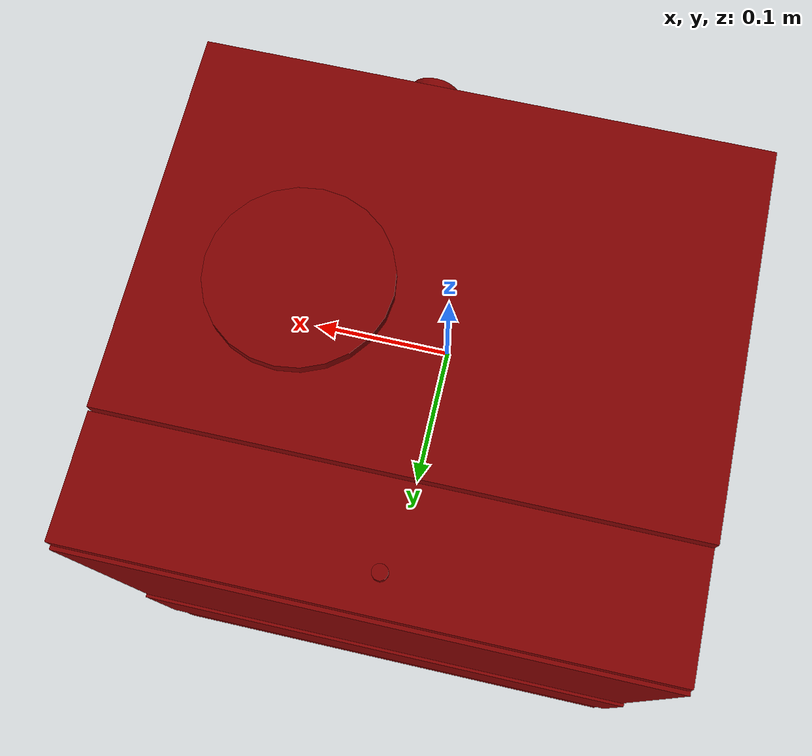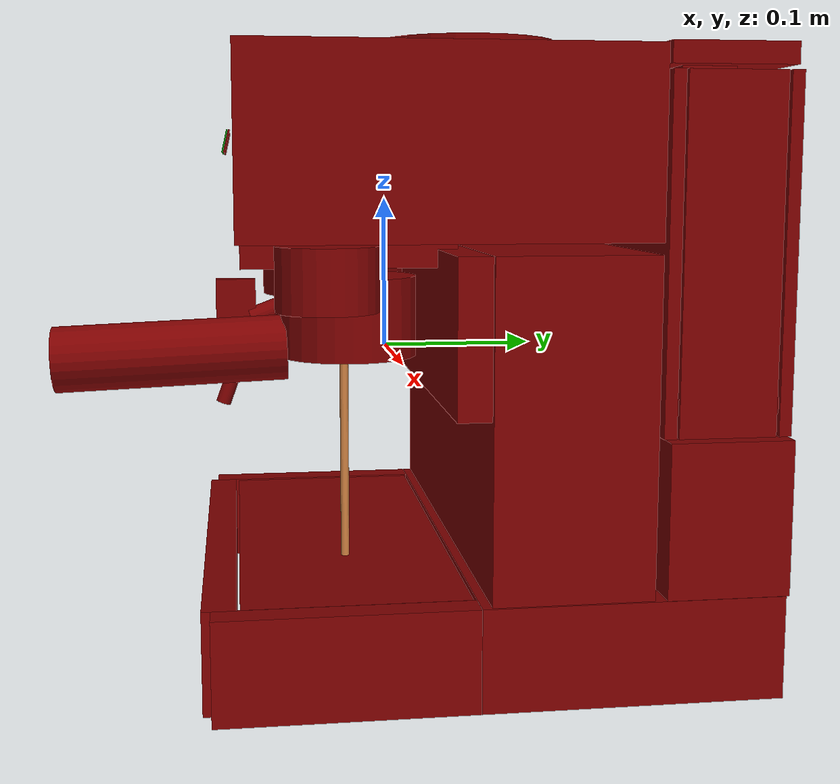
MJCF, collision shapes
<?xml version='1.0' encoding='UTF-8'?>
<mujoco model="model">
  <compiler angle="radian"/>
  <asset>
    <mesh file="visuals/Body001.obj" name="Body001_vis"/>
    <mesh file="visuals/Button001.obj" name="Button001_vis"/>
    <mesh file="visuals/Button002.obj" name="Button002_vis"/>
    <mesh file="visuals/Container001_Clear.obj" name="Container001_Clear_vis"/>
    <mesh file="visuals/Lever001.obj" name="Lever001_vis"/>
    <mesh file="visuals/Lever002.obj" name="Lever002_vis"/>
    <mesh file="visuals/Lid001.obj" name="Lid001_vis"/>
    <mesh file="visuals/Lid002.obj" name="Lid002_vis"/>
    <texture file="visuals/T_BC001.png" name="Body001_material" type="2d"/>
    <material name="Body001_material" rgba="1 1 1 1.0" texture="Body001_material" shininess="0.4472135901451111" specular="0.7"/>
    <texture file="visuals/T_BC001.png" name="Button001_material" type="2d"/>
    <material name="Button001_material" rgba="1 1 1 1.0" texture="Button001_material" shininess="0.4472135901451111" specular="0.7"/>
    <texture file="visuals/T_BC001.png" name="Button002_material" type="2d"/>
    <material name="Button002_material" rgba="1 1 1 1.0" texture="Button002_material" shininess="0.4472135901451111" specular="0.7"/>
    <texture file="visuals/T_BC001.png" name="Container001_Clear_material" type="2d"/>
    <material name="Container001_Clear_material" rgba="1 1 1 0.699999988079071" texture="Container001_Clear_material" shininess="0.4472135901451111" specular="0.7"/>
    <texture file="visuals/T_BC001.png" name="Lid001_material" type="2d"/>
    <material name="Lid001_material" rgba="1 1 1 1.0" texture="Lid001_material" shininess="0.4472135901451111" specular="0.71"/>
    <texture file="visuals/T_BC001.png" name="Lever001_material" type="2d"/>
    <material name="Lever001_material" rgba="1 1 1 1.0" texture="Lever001_material" shininess="0.4472135901451111" specular="0.7"/>
    <texture file="visuals/T_BC001.png" name="Lever002_material" type="2d"/>
    <material name="Lever002_material" rgba="1 1 1 1.0" texture="Lever002_material" shininess="0.4472135901451111" specular="0.7"/>
    <texture file="visuals/T_BC001.png" name="Lid002_material" type="2d"/>
    <material name="Lid002_material" rgba="1 1 1 1.0" texture="Lid002_material" shininess="0.4472135901451111" specular="0.7"/>
  </asset>
  <default>
    <default class="visual">
      <geom conaffinity="0" contype="0" group="1" type="mesh"/>
    </default>
    <default class="collision">
      <geom group="0" rgba="0.5 0 0 0.5"/>
    </default>
    <default class="spawn">
      <geom group="0" rgba="1 1 1 0.5" contype="0" conaffinity="0"/>
      <site group="0" rgba="1 1 1 0.5"/>
    </default>
    <default class="region">
      <geom group="1" conaffinity="0" contype="0" rgba="0 1 0 0"/>
    </default>
  </default>
  <worldbody>
    <body>
      <body name="object">
        <geom class="collision" type="box" pos="-0.129240 -0.107524 0.139688" size="0.00829386617988348 0.0004603988490998745 0.008283811621367931" quat="0.9937249422073364 -0.11185166984796524 -0.0 0.0" name="start_button_1" rgba="0.0 0.5 0 0.5"/>
        <geom class="collision" type="box" pos="-0.055699 -0.107524 0.139688" size="0.00829386617988348 0.0004603988490998745 0.008283811621367931" quat="0.9937249422073364 -0.11185166984796524 -0.0 0.0" name="start_button_2" rgba="0.0 0.5 0 0.5"/>
        <site type="cylinder" rgba="0.8 0.5 0.25 1" size="0.0027536980342119932 0.08874481916427612" pos="0.057463 -0.032999 -0.075008" name="coffee_liquid"/>
        <site rgba="0 0 0 0" size="0.009999999776482582 0.009999999776482582" pos="0.056955 -0.032760 -0.132091" name="receptacle_place_site"/>
        <geom mesh="Body001_vis" type="mesh" solimp="0.998 0.998 0.001" solref="0.001 1" density="100" friction="0.95 0.3 0.1" class="visual" material="Body001_material"/>
        <geom class="collision" type="cylinder" pos="0.079532 0.040513 0.191383" size="0.05538521334528923 0.004936670418828726" quat="1.0 0.0 0.0 0.0"/>
        <geom class="collision" type="cylinder" pos="-0.056295 -0.031015 0.045135" size="0.05053246021270752 0.013549587689340115" quat="1.0 0.0 0.0 0.0"/>
        <geom class="collision" type="cylinder" pos="0.138425 -0.048908 0.056499" size="0.030362926423549652 0.01899637095630169" quat="1.0 0.0 0.0 0.0"/>
        <geom class="collision" type="cylinder" pos="-0.117040 -0.055953 0.057201" size="0.006835853680968285 0.014619498513638973" quat="1.0 0.0 0.0 0.0"/>
        <geom class="collision" type="box" pos="-0.000310 0.018833 0.133193" size="0.1759909689426422 0.12020935863256454 0.05540347471833229" quat="1.0 0.0 0.0 0.0"/>
        <geom class="collision" type="box" pos="0.001777 -0.032876 0.071692" size="0.10459261387586594 0.0657259002327919 0.011697204783558846" quat="1.0 0.0 0.0 0.0"/>
        <geom class="collision" type="box" pos="0.000524 0.089787 -0.029602" size="0.1772216260433197 0.048218823969364166 0.10074751079082489" quat="1.0 0.0 0.0 0.0"/>
        <geom class="collision" type="box" pos="-0.000402 0.127117 -0.162399" size="0.17814703285694122 0.09116116166114807 0.03146691247820854" quat="1.0 0.0 0.0 0.0"/>
        <geom class="collision" type="box" pos="0.000032 0.182824 -0.084019" size="0.17771267890930176 0.03729342669248581 0.04676920548081398" quat="1.0 0.0 0.0 0.0"/>
        <geom class="collision" type="box" pos="0.169047 -0.041540 -0.162399" size="0.008698883466422558 0.07716818898916245 0.03146691247820854" quat="1.0 0.0 0.0 0.0"/>
        <geom class="collision" type="box" pos="-0.170154 -0.041540 -0.162399" size="0.009009155444800854 0.07716818898916245 0.03146691247820854" quat="1.0 0.0 0.0 0.0"/>
        <geom class="collision" type="box" pos="-0.000367 -0.114113 -0.162399" size="0.16105228662490845 0.009997827000916004 0.03146691247820854" quat="1.0 0.0 0.0 0.0"/>
        <geom class="collision" type="box" pos="0.000524 0.030612 0.024524" size="0.1772216260433197 0.010127977468073368 0.046621210873126984" quat="1.0 0.0 0.0 0.0"/>
        <geom class="collision" type="box" pos="-0.000073 -0.032745 -0.187945" size="0.1587677299976349 0.06908570230007172 0.0018989859381690621" quat="1.0 0.0 0.0 0.0"/>
        <body name="Button001">
          <joint axis="-4.5158023026923674e-18 0.9796626567840576 -0.20065173506736755" pos="-0.129175 -0.105632 0.139321" limited="true" name="Button001_joint" range="0.0 0.002" type="slide" damping="1" frictionloss="1" armature=".01" stiffness="0.2" springref="-0.1"/>
          <geom mesh="Button001_vis" type="mesh" solimp="0.998 0.998 0.001" solref="0.001 1" density="100" friction="0.95 0.3 0.1" class="visual" material="Button001_material"/>
          <geom class="collision" type="box" pos="-0.129240 -0.106147 0.139375" size="0.00829386617988348 0.0005713235586881638 0.008283811621367931" quat="0.9937249422073364 -0.11185166984796524 -0.0 0.0"/>
        </body>
        <body name="Button002">
          <joint axis="-4.5158023026923674e-18 0.9796626567840576 -0.20065173506736755" pos="-0.055702 -0.105632 0.139321" limited="true" name="Button002_joint" range="0.0 0.002" type="slide" damping="1" frictionloss="1" armature=".01" stiffness="0.2" springref="-0.1"/>
          <geom mesh="Button002_vis" type="mesh" solimp="0.998 0.998 0.001" solref="0.001 1" density="100" friction="0.95 0.3 0.1" class="visual" material="Button002_material"/>
          <geom class="collision" type="box" pos="-0.055699 -0.106147 0.139375" size="0.00829386617988348 0.0005713235586881638 0.008283811621367931" quat="0.9937249422073364 -0.11185166984796524 -0.0 0.0"/>
        </body>
        <body name="Container001_Clear">
          <joint axis="0.0 0.0 1.0" pos="-0.000054 0.179157 0.066750" limited="true" name="Container001_Clear_joint" range="0.0 0.1" type="slide" damping="1" frictionloss="1" armature=".01" stiffness="0.05"/>
          <geom mesh="Container001_Clear_vis" type="mesh" solimp="0.998 0.998 0.001" solref="0.001 1" density="100" friction="0.95 0.3 0.1" class="visual" material="Container001_Clear_material"/>
          <geom class="collision" type="box" pos="0.000063 0.214259 0.069572" size="0.17603018879890442 0.0037574185989797115 0.10473986715078354" quat="1.0 0.0 0.0 0.0"/>
          <geom class="collision" type="box" pos="-0.173777 0.180163 0.069572" size="0.0021905493922531605 0.02986406907439232 0.10473986715078354" quat="1.0 0.0 0.0 0.0"/>
          <geom class="collision" type="box" pos="0.173967 0.179504 0.069572" size="0.002126147039234638 0.029204605147242546 0.10473986715078354" quat="1.0 0.0 0.0 0.0"/>
          <geom class="collision" type="box" pos="0.000063 0.145131 0.069572" size="0.17603018879890442 0.0037574185989797115 0.10473986715078354" quat="1.0 0.0 0.0 0.0"/>
          <geom class="collision" type="box" pos="-0.000059 0.178605 -0.017021" size="0.17368704080581665 0.037167664617300034 0.004850765690207481" quat="1.0 0.0 0.0 0.0"/>
          <body name="Lid001">
            <joint axis="1.0 0.0 0.0" pos="-0.000054 0.140761 0.190010" limited="true" name="Lid001_joint" range="0.0 1.5707963267948966" type="hinge" damping="1" frictionloss="1" armature=".01" stiffness="0.05"/>
            <geom mesh="Lid001_vis" type="mesh" solimp="0.998 0.998 0.001" solref="0.001 1" density="100" friction="0.95 0.3 0.1" class="visual" material="Lid001_material"/>
            <geom class="collision" type="box" pos="-0.000059 0.178605 0.183754" size="0.17368704080581665 0.037167664617300034 0.006403534207493067" quat="1.0 0.0 0.0 0.0"/>
            <geom class="collision" type="box" pos="-0.000059 0.168075 0.164734" size="0.15969868004322052 0.016233323141932487 0.012751784175634384" quat="1.0 0.0 0.0 0.0"/>
            <geom class="collision" type="cylinder" pos="-0.004067 0.193061 0.193004" size="0.0045534418895840645 0.0026227280031889677" quat="1.0 0.0 0.0 0.0"/>
          </body>
        </body>
        <body name="Lever001">
          <joint axis="0.0 0.0 1.0" pos="-0.138068 -0.032114 0.066310" limited="true" name="Lever001_joint" range="-0.7853981633974483 0.7853981633974483" type="hinge" damping="1" frictionloss="1" armature=".01" stiffness="1"/>
          <geom mesh="Lever001_vis" type="mesh" solimp="0.998 0.998 0.001" solref="0.001 1" density="100" friction="0.95 0.3 0.1" class="visual" material="Lever001_material"/>
          <geom class="collision" type="cylinder" pos="-0.138086 -0.035006 0.042054" size="0.005790432449430227 0.016814250499010086" quat="0.9991801977157593 -0.04048357531428337 -0.0 0.0"/>
          <geom class="collision" type="cylinder" pos="-0.138086 -0.065675 0.012692" size="0.008822391740977764 0.025618448853492737" quat="0.8225811719894409 -0.5686476826667786 -0.0 0.0"/>
          <geom class="collision" type="cylinder" pos="-0.136902 -0.103576 -0.037197" size="0.005795391276478767 0.026912514120340347" quat="0.9844388961791992 -0.17562970519065857 -0.005758932325989008 0.0010274267988279462"/>
          <geom class="collision" type="cylinder" pos="-0.137535 -0.090560 -0.004710" size="0.00921021681278944 0.008266246877610683" quat="0.9773769378662109 -0.21150484681129456 -0.0 0.0"/>
          <geom class="collision" type="box" pos="-0.138503 -0.101795 0.018948" size="0.0050028786063194275 0.015336957760155201 0.016370519995689392" quat="1.0 0.0 0.0 0.0"/>
        </body>
        <body name="Lever002">
          <joint axis="0.0 0.0 1.0" pos="0.057125 -0.031779 0.000374" limited="true" name="Lever002_joint" range="-0.7853981633974483 0.7853981633974483" type="hinge" damping="1" frictionloss="1" armature=".01" stiffness="1"/>
          <geom mesh="Lever002_vis" type="mesh" solimp="0.998 0.998 0.001" solref="0.001 1" density="100" friction="0.95 0.3 0.1" class="visual" material="Lever002_material"/>
          <geom class="collision" type="cylinder" pos="0.057107 -0.030366 0.026707" size="0.0437949001789093 0.02557303011417389" quat="1.0 0.0 0.0 0.0"/>
          <geom class="collision" type="cylinder" pos="0.056909 -0.142159 0.003875" size="0.02089823968708515 0.0724141076207161" quat="0.692166805267334 0.7214877605438232 -0.015298333019018173 0.011247552931308746"/>
        </body>
        <body name="Lid002">
          <joint axis="0.0 0.0 1.0" pos="-0.000048 -0.032922 -0.134503" limited="true" name="Lid002_joint" range="0.0 0.05" type="slide" damping="1" frictionloss="1" armature=".01" stiffness="0.05"/>
          <geom mesh="Lid002_vis" type="mesh" solimp="0.998 0.998 0.001" solref="0.001 1" density="100" friction="0.95 0.3 0.1" class="visual" material="Lid002_material"/>
          <geom class="collision" type="box" pos="-0.000073 -0.033877 -0.133298" size="0.1587677299976349 0.06795383989810944 0.0018989859381690621" quat="1.0 0.0 0.0 0.0"/>
        </body>
        <geom class="region" name="reg_main" type="box" pos="-5.3999999999998494e-05 0.046541 0.0008975000000000094" size="0.175063 0.171011 0.19640849999999999"/>
      </body>
    </body>
  </worldbody>
  <actuator>
    <motor name="Button001_joint_actuator" joint="Button001_joint" gear="0.5"/>
    <motor name="Button002_joint_actuator" joint="Button002_joint" gear="0.5"/>
    <motor name="Container001_Clear_joint_actuator" joint="Container001_Clear_joint" gear="10"/>
    <motor name="Lever001_joint_actuator" joint="Lever001_joint" gear="10"/>
    <motor name="Lever002_joint_actuator" joint="Lever002_joint" gear="10"/>
    <motor name="Lid002_joint_actuator" joint="Lid002_joint" gear="10"/>
    <motor name="Lid001_joint_actuator" joint="Lid001_joint" gear="10"/>
  </actuator>
</mujoco>
